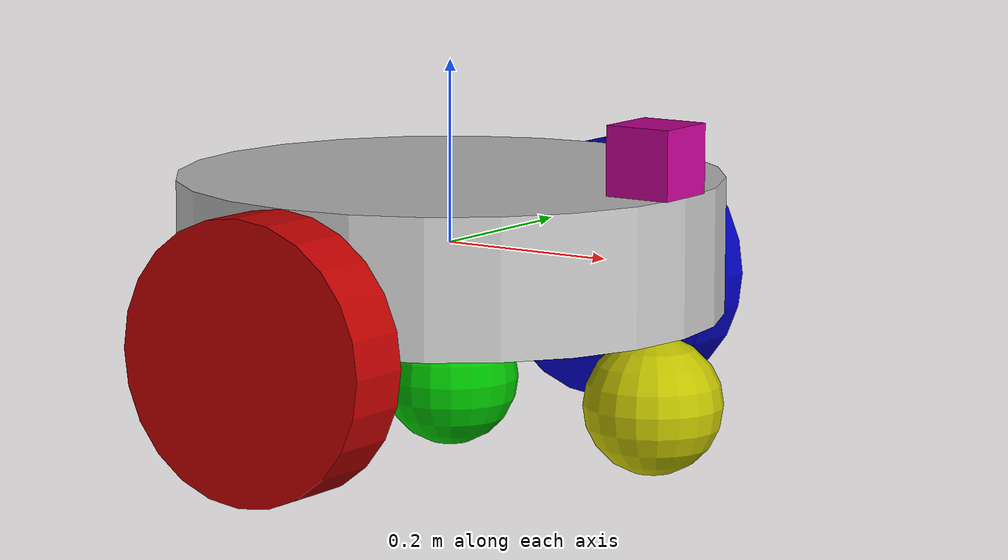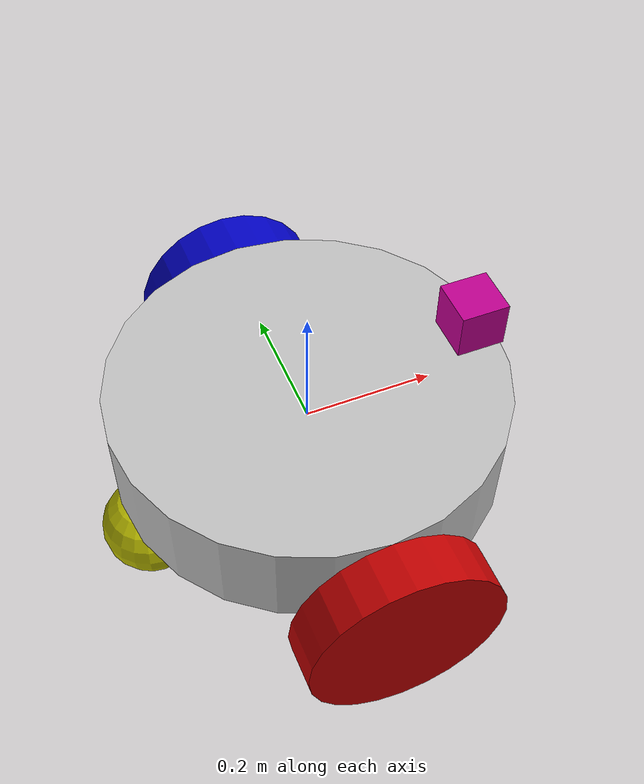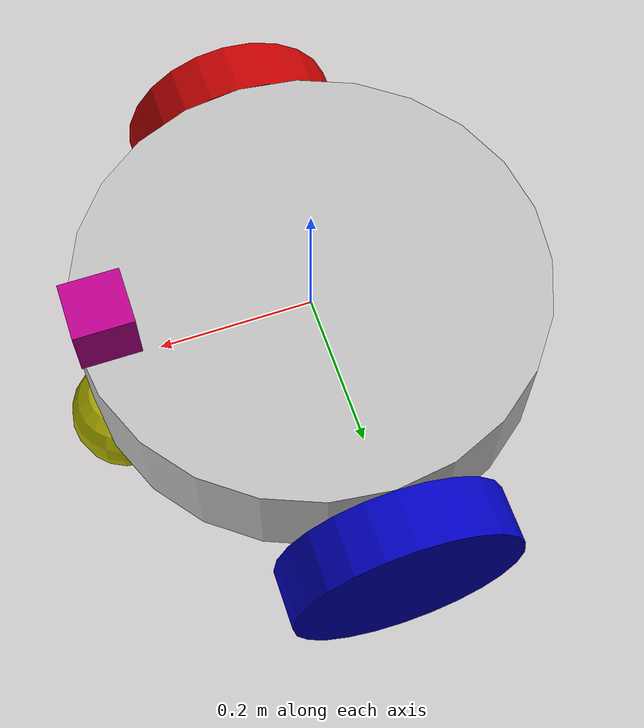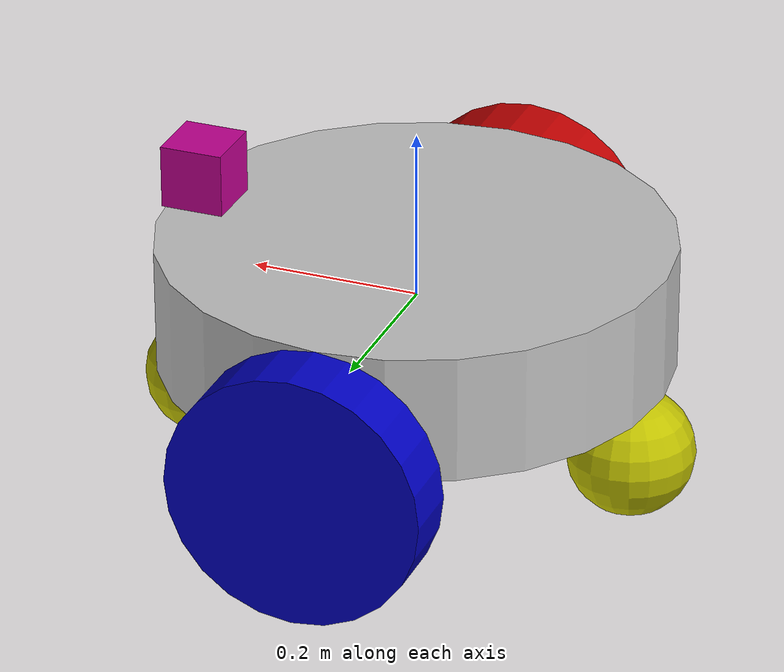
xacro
<?xml version="1.0"?>
<robot xmlns:xacro="http://www.ros.org/wiki/xacro" xmlns:gz="http://gazebosim.org/schema" name="cleaning_bot">
    <!-- Xacro property for color brightness and alpha. -->
    <xacro:property name="bright" value=".75" />
    <xacro:property name="alpha" value="1" />

    <!-- Xacro property for scale. -->
    <xacro:property name="scale" value=".15" />

    <!-- Scale derived from 'scale' property. -->
    <xacro:property name="chassis_radius" value="${scale*2}" />
    <xacro:property name="chassis_length" value="${scale*1}" />
    <xacro:property name="wheel_radius" value="${chassis_radius/2}" />
    <xacro:property name="wheel_length" value="${chassis_length/2}" />
    <xacro:property name="caster_radius" value="${chassis_radius/4}" />
    <xacro:property name="lidar_length" value="${chassis_radius/4}" />

    <xacro:property name="wheel_distance" value="${chassis_radius+wheel_length/2}" />
    <xacro:property name="caster_distance" value="${chassis_radius * 1.5}" />

    <!-- Inertial macros with proper tensor calculations. -->
    <!-- Cylindrical inertia (for chassis) -->
    <xacro:macro name="cylinder_inertial" params="mass radius length">
    <inertial>
        <mass value="${mass}" />
        <!-- Ixx = Iyy = (1/12)*m*(3*r^2 + h^2), Izz = (1/2)*m*r^2 -->
        <inertia ixx="${mass*(3*radius*radius + length*length)/12}"
                 ixy="0.0" ixz="0.0"
                 iyy="${mass*(3*radius*radius + length*length)/12}"
                 iyz="0.0"
                 izz="${mass*radius*radius/2}" />
    </inertial>
    </xacro:macro>

    <!-- Sphere inertial (for caster wheel) -->
    <xacro:macro name="sphere_inertial" params="mass radius">
    <inertial>
        <mass value="${mass}" />
        <!-- I = (2/5)*m*r^2 for all axes -->
        <inertia ixx="${mass*radius*radius*2/5}"
                 ixy="0.0" ixz="0.0"
                 iyy="${mass*radius*radius*2/5}"
                 iyz="0.0"
                 izz="${mass*radius*radius*2/5}" />
    </inertial>
    </xacro:macro>

    <!-- Box inertial (for lidar) -->
    <xacro:macro name="box_inertial" params="mass length width height">
    <inertial>
        <mass value="${mass}" />
        <!-- Ixx = (1/12)*m*(w^2 + h^2), Iyy = (1/12)*m*(l^2 + h^2), Izz = (1/12)*m*(l^2 + w^2) -->
        <inertia ixx="${mass*(width*width + height*height)/12}"
                 ixy="0.0" ixz="0.0"
                 iyy="${mass*(length*length + height*height)/12}"
                 iyz="0.0"
                 izz="${mass*(length*length + width*width)/12}" />
    </inertial>
    </xacro:macro>

    <!-- Default inertial from ROS tutorials. -->
    <xacro:macro name="default_inertial" params="mass">
    <inertial>
        <mass value="${mass*scale}" />
        <inertia ixx="1.0" ixy="0.0" ixz="0.0" iyy="1.0" iyz="0.0" izz="1.0" />
    </inertial>
    </xacro:macro>

    <!-- List of materials for easier viewing. -->
    <material name="red">
        <color rgba="${bright} 0.0 0.0 ${alpha}"/>
    </material>

    <material name="blue">
        <color rgba="0 0 ${bright} ${alpha}" />
    </material>

    <material name="green">
        <color rgba="0 ${bright} 0 ${alpha}" />
    </material>

    <material name="white">
        <color rgba="${bright} ${bright} ${bright} ${alpha}"/>
    </material>

    <material name="purple">
        <color rgba="${bright} 0 ${bright*0.75} ${alpha}" />
    </material>

    <material name="yellow">
        <color rgba="${bright} ${bright} 0.0 ${alpha}"/>
    </material>

    <!-- This is the base link of the robot. A simple cylinderical chassis. -->
    <link name="base_link">
        <visual>
           <geometry>
                <cylinder radius="${chassis_radius}" length="${chassis_length}"/>
           </geometry>
           <material name="white"/>
        </visual>
        <collision>
            <geometry>
                <cylinder radius="${chassis_radius}" length="${chassis_length}"/>
            </geometry>
        </collision>
        <xacro:cylinder_inertial mass="3.0" radius="${chassis_radius}" length="${chassis_length}" />
    </link>

    <!-- This is the left wheel link. -->
    <link name="left_wheel_link">
        <visual>
            <geometry>
                <cylinder radius="${wheel_radius}" length="${wheel_length}"/>
            </geometry>
            <material name="blue"/>
        </visual>
        <collision>
            <geometry>
                <cylinder radius="${wheel_radius}" length="${wheel_length}"/>
            </geometry>
        </collision>
        <xacro:cylinder_inertial mass="1.0" radius="${wheel_radius}" length="${wheel_length}" />
    </link>

    <!-- This is the right wheel link. -->
    <link name="right_wheel_link">
        <visual>
            <geometry>
                <cylinder radius="${wheel_radius}" length="${wheel_length}"/>
            </geometry>
            <material name="red"/>
        </visual>
        <collision>
            <geometry>
                <cylinder radius="${wheel_radius}" length="${wheel_length}"/>
            </geometry>
        </collision>
        <xacro:cylinder_inertial mass="1.0" radius="${wheel_radius}" length="${wheel_length}" />
    </link>

    <!-- The caster wheel. -->
    <link name="caster_wheel_link">
        <visual>
            <geometry>
                <sphere radius="${caster_radius}"/>
            </geometry>
            <material name="green"/>
        </visual>
        <collision>
            <geometry>
                <sphere radius="${caster_radius}"/>
            </geometry>
        </collision>
        <xacro:sphere_inertial mass="0.5" radius="${caster_radius}" />
    </link>

    <!-- The front stabilizer. -->
    <link name="front_stabilizer_link">
        <visual>
            <geometry>
                <sphere radius="${caster_radius}"/>
            </geometry>
            <material name="yellow"/>
        </visual>
        <collision>
            <geometry>
                <sphere radius="${caster_radius}"/>
            </geometry>
        </collision>
        <xacro:sphere_inertial mass="0.5" radius="${caster_radius}" />
    </link>

    <!-- The back stabilizer. -->
    <link name="back_stabilizer_link">
        <visual>
            <geometry>
                <sphere radius="${caster_radius}"/>
            </geometry>
            <material name="yellow"/>
        </visual>
        <collision>
            <geometry>
                <sphere radius="${caster_radius}"/>
            </geometry>
        </collision>
        <xacro:sphere_inertial mass="0.5" radius="${caster_radius}" />
    </link>

    <!-- This is the lidar camera link mounted on top of the chassis. -->
    <link name="lidar_link">
        <visual>
            <geometry>
                <box size="${lidar_length} ${lidar_length} ${lidar_length}"/>
            </geometry>
            <material name="purple"/>
        </visual>
        <xacro:box_inertial mass="0.05" length="${lidar_length}" width="${lidar_length}" height="${lidar_length}" />
    </link>

    <!-- This joint defines base/left-wheel joint. -->
    <joint name="base_left_wheel_joint" type="continuous">
        <parent link="base_link"/>
        <child link="left_wheel_link"/>
        <origin xyz="0 ${wheel_distance} -${chassis_length/2}" rpy="1.57 0 0"/>
        <axis xyz="0 0 -1"/>
        <dynamics damping="0.5" friction="0.1"/>
    </joint>

    <!-- This joint defines base/right-wheel joint. -->
    <joint name="base_right_wheel_joint" type="continuous">
        <parent link="base_link"/>
        <child link="right_wheel_link"/>
        <origin xyz="0 -${wheel_distance} -${chassis_length/2}" rpy="1.57 0 0"/>
        <axis xyz="0 0 -1"/>
        <dynamics damping="0.5" friction="0.1"/>
    </joint>

    <!-- This joint defines base/caster-wheel joint. -->
    <joint name="base_caster_wheel_joint" type="fixed">
        <parent link="base_link"/>
        <child link="caster_wheel_link"/>
        <origin xyz="0 0 -${chassis_length}" rpy="0.0 0.0 0.0"/>
    </joint>

    <joint name="base_front_stabilizer_joint" type="fixed">
        <parent link="base_link"/>
        <child link="front_stabilizer_link"/>
        <origin xyz="${chassis_radius-caster_radius/2} 0 -${chassis_length}" rpy="0.0 0.0 0.0"/>
    </joint>

    <joint name="base_back_stabilizer_joint" type="fixed">
        <parent link="base_link"/>
        <child link="back_stabilizer_link"/>
        <origin xyz="-${chassis_radius-caster_radius/2} 0 -${chassis_length}" rpy="0.0 0.0 0.0"/>
    </joint>

    <!-- This joint defines base/lidar joint. -->
    <joint name="base_lidar_joint" type="fixed">
        <parent link="base_link"/>
        <child link="lidar_link"/>
        <origin xyz="${chassis_radius-lidar_length/2} 0 ${chassis_length-lidar_length/2}" rpy="0.0 0.0 0.0"/>
    </joint>

    <gazebo reference="base_link">
        <material>Gazebo/White</material>
    </gazebo>

    <gazebo reference="left_wheel_link">
        <material>Gazebo/Blue</material>
    </gazebo>

    <gazebo reference="right_wheel_link">
        <material>Gazebo/Red</material>
    </gazebo>

    <gazebo reference="caster_wheel_link">
        <material>Gazebo/Green</material>
    </gazebo>

    <gazebo reference="left_stabilizer_link">
        <material>Gazebo/Yellow</material>
    </gazebo>

    <gazebo reference="right_stabilizer_link">
        <material>Gazebo/Yellow</material>
    </gazebo>

    <gazebo reference="lidar_link">
        <material>Gazebo/Purple</material>
    </gazebo>

    <!-- Gazebo LiDAR sensor. -->
    <gazebo reference="lidar_link">
        <sensor name="lidar_sensor" type="gpu_lidar">
            <pose>0 0 0 0 0 0</pose>
            <update_rate>10</update_rate>

            <lidar>
            <scan>
                <horizontal>
                <samples>720</samples>
                <resolution>1</resolution>
                <min_angle>-1.5708</min_angle>
                <max_angle>1.5708</max_angle>
                </horizontal>
            </scan>

            <range>
                <min>0.12</min>
                <max>30.0</max>
                <resolution>0.01</resolution>
            </range>

            </lidar>

            <always_on>true</always_on>
            <visualize>true</visualize>
            <gz:frame_id>lidar_link</gz:frame_id>

            <topic>/scan</topic>
        </sensor>
    </gazebo>

    <!-- Gazebo plugin for diff-drive. Allows the robot to move. -->
    <gazebo>
        <plugin filename="gz-sim-sensors-system" name="gz::sim::systems::Sensors">
            <render_engine>ogre2</render_engine>
        </plugin>
    	<plugin filename="libgz-sim-joint-state-publisher-system.so" name="gz::sim::systems::JointStatePublisher">
            <topic>joint_states</topic>
            <joint_name>base_left_wheel_joint</joint_name>
            <joint_name>base_right_wheel_joint</joint_name>
        </plugin>
        <plugin filename="gz-sim-diff-drive-system" name="gz::sim::systems::DiffDrive">
            <!-- Wheel joints -->
            <left_joint>base_left_wheel_joint</left_joint>
            <right_joint>base_right_wheel_joint</right_joint>

            <!-- Robot kinematics -->
            <wheel_separation>${wheel_distance*2}</wheel_separation>
            <wheel_radius>${wheel_radius}</wheel_radius>

            <!-- Motion limits -->
            <max_linear_velocity>1.0</max_linear_velocity>
            <max_angular_velocity>2.0</max_angular_velocity>

            <!-- Command & odometry -->
            <topic>/cmd_vel</topic>
            <odom_topic>/odom</odom_topic>
            <frame_id>odom</frame_id>
            <child_frame_id>base_link</child_frame_id>
            <tf_topic>/tf</tf_topic>

            <!-- Behavior -->
            <update_rate>50</update_rate>
            <publish_odom>true</publish_odom>
            <publish_tf>true</publish_tf>
        </plugin>
    </gazebo>
</robot>
